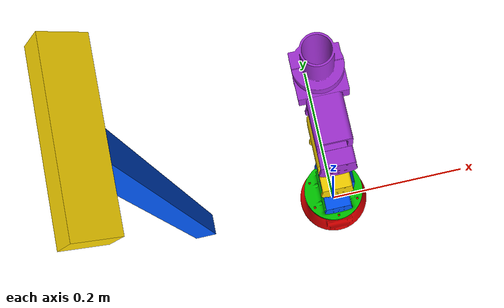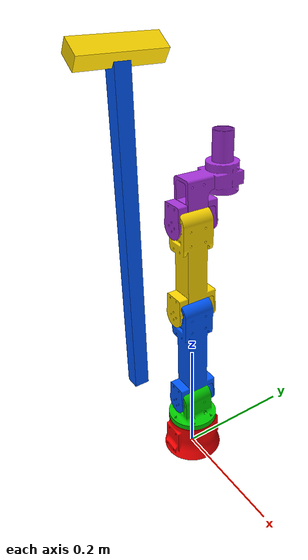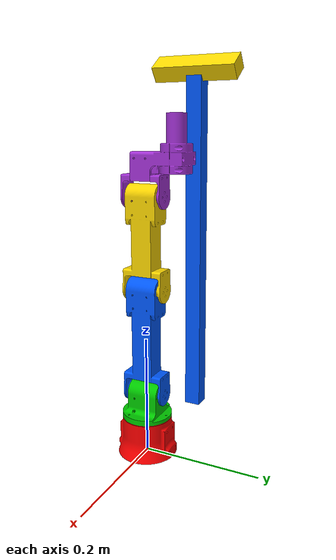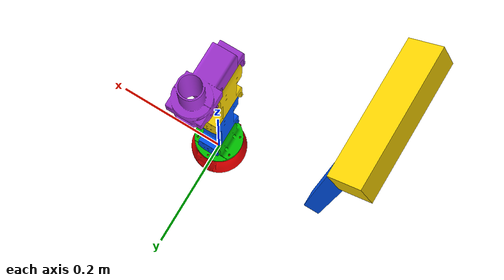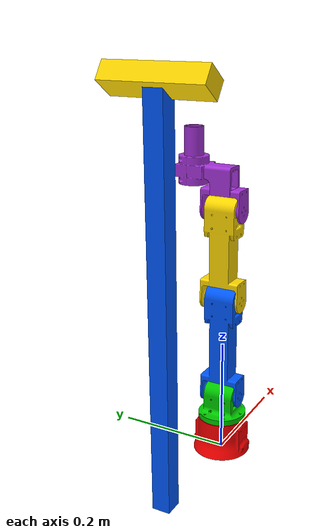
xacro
<?xml version="1.0"?>
<robot xmlns:xacro="http://www.ros.org/wiki/xacro" name="tomato_arm">

    <!-- CAMERA PARAMETERS                                     -->

    <!--
        base_link convention:

        +X = forward
        -X = backward
        +Y = robot-left
        -Y = robot-right
        +Z = upward
    -->

    <!-- Both camera lens centers are 20 cm behind the shoulder -->
    <xacro:property name="camera_x" value="-0.20"/>

    <!-- Camera lens centers are 65 cm above base_link -->
    <xacro:property name="camera_height" value="0.65"/>

    <!-- 35 degrees downward -->
    <xacro:property name="camera_pitch" value="0.610865"/>

    <!-- Distance between the two camera lens centers -->
    <xacro:property name="camera_baseline" value="0.10"/>

    <!-- Temporary approximate inertias for initial Gazebo testing -->
    <xacro:macro name="simple_inertial" params="mass">
        <inertial>
            <origin xyz="0 0 0" rpy="0 0 0"/>
            <mass value="${mass}"/>
            <inertia
                ixx="0.001"
                ixy="0.0"
                ixz="0.0"
                iyy="0.001"
                iyz="0.0"
                izz="0.001"/>
        </inertial>
    </xacro:macro>

    <!-- MATERIALS                                             -->

    <material name="color1">
        <color rgba="1.0 0.0 0.0 1.0"/>
    </material>

    <material name="color2">
        <color rgba="0.0 0.8 0.0 1.0"/>
    </material>

    <material name="color3">
        <color rgba="0.0 0.35 1.0 1.0"/>
    </material>

    <material name="color4">
        <color rgba="1.0 0.85 0.0 1.0"/>
    </material>

    <material name="color5">
        <color rgba="0.65 0.20 0.85 1.0"/>
    </material>

    <!-- ROBOT ARM                                             -->

    <link name="base_link">
        <xacro:simple_inertial mass="1.0"/>
        <visual>
            <!--
                Rotate only the base STL by 90 degrees.

                This does not rotate base_link, the arm,
                the camera transforms, or the IK coordinate frame.
            -->
            <origin xyz="0 0 0" rpy="0 0 1.5708"/>

            <geometry>
                <mesh
                    filename="package://tomato_description/meshes/base_link.stl"/>
            </geometry>

            <material name="color1"/>
        </visual>
    </link>

    <joint name="joint_1" type="continuous">
        <parent link="base_link"/>
        <child link="shoulder_link"/>

        <!-- Physical joint_1 zero is rotated 180 degrees about base Z. -->
        <!-- This rotates the shoulder and the entire descendant arm chain once. -->
        <origin xyz="0 0 0.06785" rpy="0 0 3.14159265359"/>

        <axis xyz="0 0 1"/>
        <limit effort="1.0" velocity="2.0"/>
    </joint>

    <link name="shoulder_link">
        <xacro:simple_inertial mass="0.30"/>
        <visual>
            <origin xyz="0 0 -0.06785" rpy="0 0 0"/>

            <geometry>
                <mesh
                    filename="package://tomato_description/meshes/shoulder_link.stl"/>
            </geometry>

            <material name="color2"/>
        </visual>
    </link>

    <joint name="joint_2" type="revolute">
        <parent link="shoulder_link"/>
        <child link="bicep_link"/>

        <origin xyz="0 0 0.04112" rpy="0 -1.5708 0"/>

        <axis xyz="0 -1 0"/>

        <limit
            lower="-1.618"
            upper="1.595"
            effort="1.0"
            velocity="2.0"/>
    </joint>

    <link name="bicep_link">
        <xacro:simple_inertial mass="0.20"/>
        <visual>
            <origin xyz="0 0 -0.10597" rpy="0 0 0"/>

            <geometry>
                <mesh
                    filename="package://tomato_description/meshes/bicep_link.stl"/>
            </geometry>

            <material name="color3"/>
        </visual>
    </link>

    <joint name="joint_3" type="revolute">
        <parent link="bicep_link"/>
        <child link="forearm_link"/>

        <origin xyz="0.1778 0 0" rpy="0 0 0"/>

        <axis xyz="0 -1 0"/>

        <limit
            lower="-1.825"
            upper="1.792"
            effort="1.0"
            velocity="2.0"/>
    </joint>

    <link name="forearm_link">
        <xacro:simple_inertial mass="0.20"/>
        <visual>
            <origin xyz="-0.1778 0 -0.10897" rpy="0 0 0"/>

            <geometry>
                <mesh
                    filename="package://tomato_description/meshes/forearm_link.stl"/>
            </geometry>

            <material name="color4"/>
        </visual>
    </link>

    <joint name="joint_4" type="revolute">
        <parent link="forearm_link"/>
        <child link="wrist_link"/>

        <origin xyz="0.1524 0 0" rpy="0 0 0"/>

        <axis xyz="0 -1 0"/>

        <limit
            lower="-1.855"
            upper="1.786"
            effort="1.0"
            velocity="2.0"/>
    </joint>

    <link name="wrist_link">
        <xacro:simple_inertial mass="0.15"/>
        <visual>
            <origin xyz="-0.3302 0 -0.10897" rpy="0 0 0"/>

            <geometry>
                <mesh
                    filename="package://tomato_description/meshes/wrist_link.stl"/>
            </geometry>

            <material name="color5"/>
        </visual>
    </link>

    <joint name="joint_5" type="fixed">
        <parent link="wrist_link"/>
        <child link="end_effector_link"/>

        <origin xyz="0.0345 0 0" rpy="0 0 0"/>
    </joint>

    <link name="end_effector_link">
        <visual>
            <origin xyz="-0.3647 0 -0.10897" rpy="0 0 0"/>
            <geometry>
                <mesh filename="package://tomato_description/meshes/end_effector_link.stl"/>
            </geometry>
            <material name="color5"/>
        </visual>
    </link>

    <link name="tool_tip_link"/>

    <joint name="tool_tip_joint" type="fixed">
        <parent link="end_effector_link"/>
        <child link="tool_tip_link"/>

        <origin xyz="0.0925 -0.054675 0" rpy="0 0 0"/>
    </joint>

    <!-- CAMERA STAND                                          -->

    <link name="camera_stand_link">
        <xacro:simple_inertial mass="0.20"/>
        <visual>
            <!--
                The camera_stand_link frame is at its bottom.
                The box is centered so it extends from z=0 to z=0.65.
            -->
            <origin
                xyz="0 0 ${camera_height / 2.0}"
                rpy="0 0 0"/>

            <geometry>
                <box size="0.03 0.03 ${camera_height}"/>
            </geometry>

            <material name="color3"/>
        </visual>
    </link>

    <joint name="camera_stand_joint" type="fixed">
        <parent link="base_link"/>
        <child link="camera_stand_link"/>

        <!-- Stand is 20 cm behind the shoulder along -X -->
        <origin
            xyz="${camera_x} 0 0"
            rpy="0 0 0"/>
    </joint>

    <!-- CAMERA MOUNT                                          -->

    <link name="camera_mount_link">
        <xacro:simple_inertial mass="0.10"/>
        <visual>
            <origin xyz="0 0 0" rpy="0 0 0"/>

            <geometry>
                <!-- Crossbar extends left/right along Y -->
                <box size="0.04 0.16 0.03"/>
            </geometry>

            <material name="color4"/>
        </visual>
    </link>

    <joint name="camera_mount_joint" type="fixed">
        <parent link="camera_stand_link"/>
        <child link="camera_mount_link"/>

        <origin
            xyz="0 0 ${camera_height}"
            rpy="0 ${camera_pitch} 0"/>
    </joint>

    <!-- LEFT CAMERA                                           -->

    <link name="left_camera_link">
        <xacro:simple_inertial mass="0.05"/>
        <visual>
            <origin xyz="0 0 0" rpy="0 0 0"/>

            <geometry>
                <box size="0.035 0.025 0.025"/>
            </geometry>

            <material name="color1"/>
        </visual>
    </link>

    <joint name="left_camera_joint" type="fixed">
        <parent link="camera_mount_link"/>
        <child link="left_camera_link"/>

        <!-- Left camera is at Y = +5 cm -->
        <origin
            xyz="0 ${camera_baseline / 2.0} 0"
            rpy="0 0 0"/>
    </joint>

    <!-- RIGHT CAMERA                                          -->

    <link name="right_camera_link">
        <xacro:simple_inertial mass="0.05"/>
        <visual>
            <origin xyz="0 0 0" rpy="0 0 0"/>

            <geometry>
                <box size="0.035 0.025 0.025"/>
            </geometry>

            <material name="color1"/>
        </visual>
    </link>

    <joint name="right_camera_joint" type="fixed">
        <parent link="camera_mount_link"/>
        <child link="right_camera_link"/>

        <!-- Right camera is at Y = -5 cm -->
        <origin
            xyz="0 ${-camera_baseline / 2.0} 0"
            rpy="0 0 0"/>
    </joint>

    <!-- CAMERA OPTICAL FRAMES                                 -->

    <link name="left_camera_optical_frame"/>

    <joint name="left_camera_optical_joint" type="fixed">
        <parent link="left_camera_link"/>
        <child link="left_camera_optical_frame"/>

        <!--
            ROS optical convention:

            +Z = viewing direction
            +X = image right
            +Y = image down
        -->
        <origin
            xyz="0 0 0"
            rpy="-1.5708 0 -1.5708"/>
    </joint>

    <link name="right_camera_optical_frame"/>

    <joint name="right_camera_optical_joint" type="fixed">
        <parent link="right_camera_link"/>
        <child link="right_camera_optical_frame"/>

        <origin
            xyz="0 0 0"
            rpy="-1.5708 0 -1.5708"/>
    </joint>

    <gazebo>
        <static>true</static>
    </gazebo>

    <!-- GAZEBO CAMERA SENSORS                                 -->

    <!-- Keep the camera links as separate Gazebo links -->
    <gazebo reference="left_camera_joint">
        <preserveFixedJoint>true</preserveFixedJoint>
    </gazebo>

    <gazebo reference="right_camera_joint">
        <preserveFixedJoint>true</preserveFixedJoint>
    </gazebo>

    <!-- LEFT CAMERA SENSOR -->
    <gazebo reference="left_camera_link">
        <sensor name="left_camera_sensor" type="camera">

            <always_on>true</always_on>
            <update_rate>15</update_rate>
            <visualize>true</visualize>

            <!-- Gazebo image topic -->
            <topic>/stereo/left/image_raw</topic>

            <!-- Frame placed in ROS message headers -->
            <gz_frame_id>left_camera_optical_frame</gz_frame_id>

            <camera name="left_camera">
                <camera_info_topic>
                    /stereo/left/camera_info
                </camera_info_topic>

                <!-- Initial 60-degree horizontal field of view -->
                <horizontal_fov>1.0472</horizontal_fov>

                <image>
                    <width>640</width>
                    <height>480</height>
                    <format>R8G8B8</format>
                </image>

                <clip>
                    <near>0.05</near>
                    <far>5.0</far>
                </clip>
            </camera>
        </sensor>
    </gazebo>

    <!-- RIGHT CAMERA SENSOR -->
    <gazebo reference="right_camera_link">
        <sensor name="right_camera_sensor" type="camera">

            <always_on>true</always_on>
            <update_rate>15</update_rate>
            <visualize>true</visualize>

            <!-- Gazebo image topic -->
            <topic>/stereo/right/image_raw</topic>

            <!-- Frame placed in ROS message headers -->
            <gz_frame_id>right_camera_optical_frame</gz_frame_id>

            <camera name="right_camera">
                <camera_info_topic>
                    /stereo/right/camera_info
                </camera_info_topic>

                <horizontal_fov>1.0472</horizontal_fov>

                <image>
                    <width>640</width>
                    <height>480</height>
                    <format>R8G8B8</format>
                </image>

                <clip>
                    <near>0.05</near>
                    <far>5.0</far>
                </clip>
            </camera>
        </sensor>
    </gazebo>

    <!-- Keep the whole model fixed during perception testing -->
    <gazebo>
        <static>true</static>
    </gazebo>

</robot>
